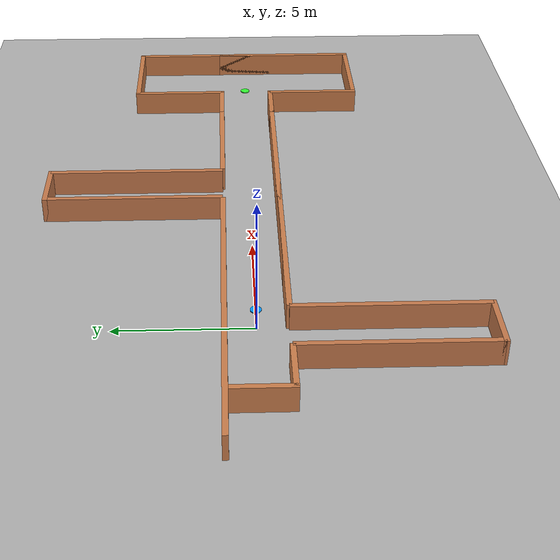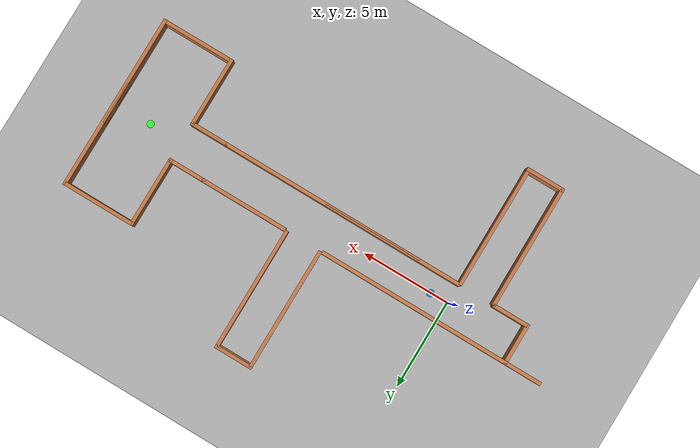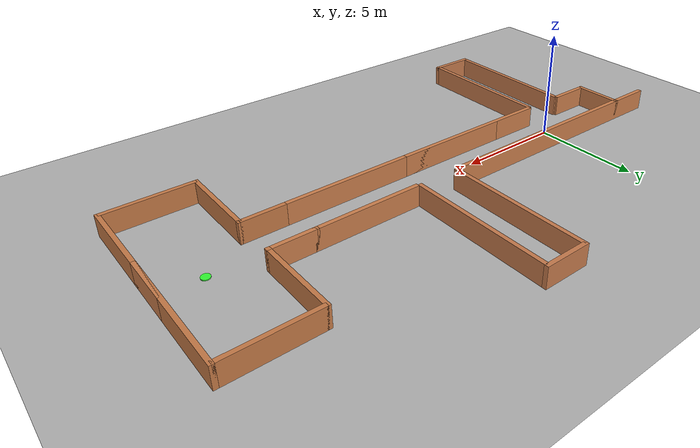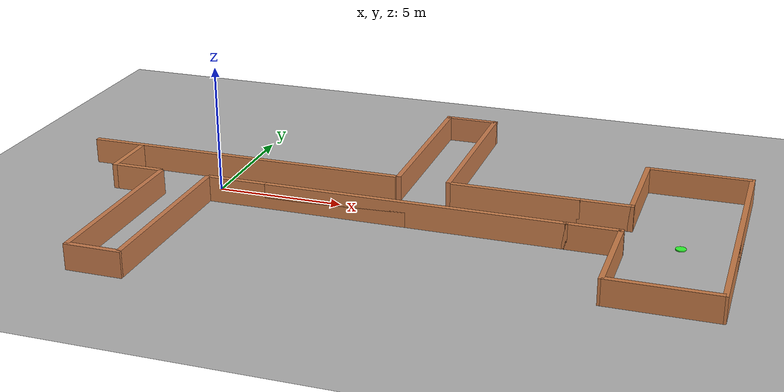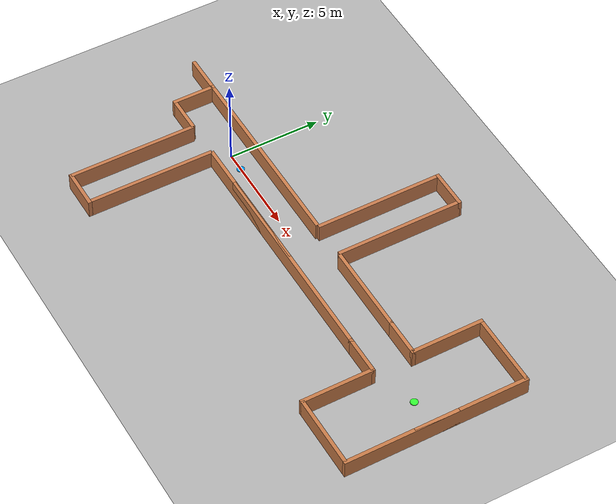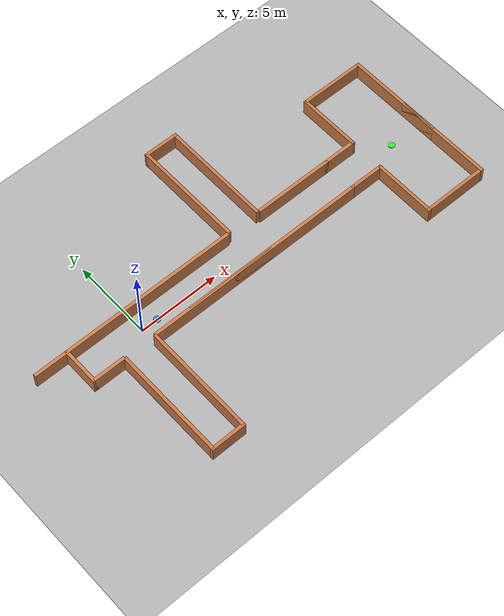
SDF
<sdf version="1.7">
  <world name="t_dual_corridor">
    <physics type="ode">
      <max_step_size>0.0005</max_step_size>
      <real_time_factor>1</real_time_factor>
      <real_time_update_rate>2000</real_time_update_rate>
      <ode>
        <solver>
          <type>quick</type>
          <iters>200</iters>
          <sor>1.3</sor>
          <use_dynamic_moi_rescaling>0</use_dynamic_moi_rescaling>
        </solver>
        <constraints>
          <cfm>1e-5</cfm>
          <erp>0.2</erp>
          <contact_max_correcting_vel>100</contact_max_correcting_vel>
          <contact_surface_layer>0.001</contact_surface_layer>
        </constraints>
      </ode>
    </physics>
    <light name="sun" type="directional">
      <cast_shadows>1</cast_shadows>
      <pose>0 0 10 0 -0 0</pose>
      <diffuse>0.8 0.8 0.8 1</diffuse>
      <specular>0.2 0.2 0.2 1</specular>
      <direction>-0.5 0.1 -0.9</direction>
      <attenuation>
        <range>10</range>
      </attenuation>
      <spot>
        <inner_angle>0</inner_angle>
        <outer_angle>0</outer_angle>
        <falloff>0</falloff>
      </spot>
    </light>
    <model name="ground_plane">
      <static>1</static>
      <link name="link">
        <collision name="collision">
          <geometry>
            <plane>
              <normal>0 0 1</normal>
              <size>160 160</size>
            </plane>
          </geometry>
          <surface>
            <friction>
              <ode>
                <mu>1</mu>
                <mu2>1</mu2>
              </ode>
              <torsional>
                <ode />
              </torsional>
            </friction>
            <contact>
              <ode />
            </contact>
            <bounce />
          </surface>
          <max_contacts>10</max_contacts>
        </collision>
        <visual name="visual">
          <cast_shadows>0</cast_shadows>
          <geometry>
            <plane>
              <normal>0 0 1</normal>
              <size>160 160</size>
            </plane>
          </geometry>
          <material>
            <ambient>0.3 0.3 0.3 1</ambient>
            <diffuse>0.7 0.7 0.7 1</diffuse>
          </material>
        </visual>
        <self_collide>0</self_collide>
        <enable_wind>0</enable_wind>
        <kinematic>0</kinematic>
      </link>
    </model>
    <model name="wall_main_bottom_far_left">
      <static>1</static>
      <pose>-3 -1.1 0.5 0 -0 0</pose>
      <link name="link">
        <collision name="collision">
          <geometry>
            <box>
              <size>2 0.2 1</size>
            </box>
          </geometry>
          <max_contacts>10</max_contacts>
          <surface>
            <contact>
              <ode />
            </contact>
            <bounce />
            <friction>
              <torsional>
                <ode />
              </torsional>
              <ode />
            </friction>
          </surface>
        </collision>
        <visual name="visual">
          <geometry>
            <box>
              <size>2 0.2 1</size>
            </box>
          </geometry>
          <material>
            <ambient>0.6 0.4 0.2 1</ambient>
            <diffuse>0.8 0.5 0.3 1</diffuse>
          </material>
        </visual>
        <self_collide>0</self_collide>
        <enable_wind>0</enable_wind>
        <kinematic>0</kinematic>
      </link>
    </model>
    <model name="wall_main_bottom_left">
      <static>1</static>
      <pose>4 -1.1 0.5 0 -0 0</pose>
      <link name="link">
        <collision name="collision">
          <geometry>
            <box>
              <size>8 0.2 1</size>
            </box>
          </geometry>
          <max_contacts>10</max_contacts>
          <surface>
            <contact>
              <ode />
            </contact>
            <bounce />
            <friction>
              <torsional>
                <ode />
              </torsional>
              <ode />
            </friction>
          </surface>
        </collision>
        <visual name="visual">
          <geometry>
            <box>
              <size>8 0.2 1</size>
            </box>
          </geometry>
          <material>
            <ambient>0.6 0.4 0.2 1</ambient>
            <diffuse>0.8 0.5 0.3 1</diffuse>
          </material>
        </visual>
        <self_collide>0</self_collide>
        <enable_wind>0</enable_wind>
        <kinematic>0</kinematic>
      </link>
    </model>
    <model name="wall_main_bottom_mid_right">
      <static>1</static>
      <pose>8.2 -1.1 0.5 0 -0 0</pose>
      <link name="link">
        <collision name="collision">
          <geometry>
            <box>
              <size>11.6 0.2 1</size>
            </box>
          </geometry>
          <max_contacts>10</max_contacts>
          <surface>
            <contact>
              <ode />
            </contact>
            <bounce />
            <friction>
              <torsional>
                <ode />
              </torsional>
              <ode />
            </friction>
          </surface>
        </collision>
        <visual name="visual">
          <geometry>
            <box>
              <size>11.6 0.2 1</size>
            </box>
          </geometry>
          <material>
            <ambient>0.6 0.4 0.2 1</ambient>
            <diffuse>0.8 0.5 0.3 1</diffuse>
          </material>
        </visual>
        <self_collide>0</self_collide>
        <enable_wind>0</enable_wind>
        <kinematic>0</kinematic>
      </link>
    </model>
    <model name="wall_main_top_left">
      <static>1</static>
      <pose>0.4 1.1 0.5 0 -0 0</pose>
      <link name="link">
        <collision name="collision">
          <geometry>
            <box>
              <size>13.0 0.2 1</size>
            </box>
          </geometry>
          <max_contacts>10</max_contacts>
          <surface>
            <contact>
              <ode />
            </contact>
            <bounce />
            <friction>
              <torsional>
                <ode />
              </torsional>
              <ode />
            </friction>
          </surface>
        </collision>
        <visual name="visual">
          <geometry>
            <box>
              <size>13.0 0.2 1</size>
            </box>
          </geometry>
          <material>
            <ambient>0.6 0.4 0.2 1</ambient>
            <diffuse>0.8 0.5 0.3 1</diffuse>
          </material>
        </visual>
        <self_collide>0</self_collide>
        <enable_wind>0</enable_wind>
        <kinematic>0</kinematic>
      </link>
    </model>
    <model name="wall_main_top_mid_right">
      <static>1</static>
      <pose>11.6 1.1 0.5 0 -0 0</pose>
      <link name="link">
        <collision name="collision">
          <geometry>
            <box>
              <size>5.0 0.2 1</size>
            </box>
          </geometry>
          <max_contacts>10</max_contacts>
          <surface>
            <contact>
              <ode />
            </contact>
            <bounce />
            <friction>
              <torsional>
                <ode />
              </torsional>
              <ode />
            </friction>
          </surface>
        </collision>
        <visual name="visual">
          <geometry>
            <box>
              <size>5.0 0.2 1</size>
            </box>
          </geometry>
          <material>
            <ambient>0.6 0.4 0.2 1</ambient>
            <diffuse>0.8 0.5 0.3 1</diffuse>
          </material>
        </visual>
        <self_collide>0</self_collide>
        <enable_wind>0</enable_wind>
        <kinematic>0</kinematic>
      </link>
    </model>
    <model name="wall_main_top_join_mid_far_right">
      <static>1</static>
      <pose>15 1.1 0.5 0 -0 0</pose>
      <link name="link">
        <collision name="collision">
          <geometry>
            <box>
              <size>2 0.2 1</size>
            </box>
          </geometry>
          <max_contacts>10</max_contacts>
          <surface>
            <contact>
              <ode />
            </contact>
            <bounce />
            <friction>
              <torsional>
                <ode />
              </torsional>
              <ode />
            </friction>
          </surface>
        </collision>
        <visual name="visual">
          <geometry>
            <box>
              <size>2 0.2 1</size>
            </box>
          </geometry>
          <material>
            <ambient>0.6 0.4 0.2 1</ambient>
            <diffuse>0.8 0.5 0.3 1</diffuse>
          </material>
        </visual>
        <self_collide>0</self_collide>
        <enable_wind>0</enable_wind>
        <kinematic>0</kinematic>
      </link>
    </model>
    <model name="wall_main_left_cap">
      <static>1</static>
      <pose>-4 0 0.5 0 -0 0</pose>
      <link name="link">
        <collision name="collision">
          <geometry>
            <box>
              <size>0.2 2.4 1</size>
            </box>
          </geometry>
          <max_contacts>10</max_contacts>
          <surface>
            <contact>
              <ode />
            </contact>
            <bounce />
            <friction>
              <torsional>
                <ode />
              </torsional>
              <ode />
            </friction>
          </surface>
        </collision>
        <visual name="visual">
          <geometry>
            <box>
              <size>0.2 2.4 1</size>
            </box>
          </geometry>
          <material>
            <ambient>0.6 0.4 0.2 1</ambient>
            <diffuse>0.8 0.5 0.3 1</diffuse>
          </material>
        </visual>
        <self_collide>0</self_collide>
        <enable_wind>0</enable_wind>
        <kinematic>0</kinematic>
      </link>
    </model>
    <model name="wall_main_right_cap">
      <static>1</static>
      <pose>20 0 0.5 0 -0 0</pose>
      <link name="link">
        <collision name="collision">
          <geometry>
            <box>
              <size>0.2 2.4 1</size>
            </box>
          </geometry>
          <max_contacts>10</max_contacts>
          <surface>
            <contact>
              <ode />
            </contact>
            <bounce />
            <friction>
              <torsional>
                <ode />
              </torsional>
              <ode />
            </friction>
          </surface>
        </collision>
        <visual name="visual">
          <geometry>
            <box>
              <size>0.2 2.4 1</size>
            </box>
          </geometry>
          <material>
            <ambient>0.6 0.4 0.2 1</ambient>
            <diffuse>0.8 0.5 0.3 1</diffuse>
          </material>
        </visual>
        <self_collide>0</self_collide>
        <enable_wind>0</enable_wind>
        <kinematic>0</kinematic>
      </link>
    </model>
    <model name="wall_t_left">
      <static>1</static>
      <pose>7 4.55 0.5 0 -0 0</pose>
      <link name="link">
        <collision name="collision">
          <geometry>
            <box>
              <size>0.2 6.9 1</size>
            </box>
          </geometry>
          <max_contacts>10</max_contacts>
          <surface>
            <contact>
              <ode />
            </contact>
            <bounce />
            <friction>
              <torsional>
                <ode />
              </torsional>
              <ode />
            </friction>
          </surface>
        </collision>
        <visual name="visual">
          <geometry>
            <box>
              <size>0.2 6.9 1</size>
            </box>
          </geometry>
          <material>
            <ambient>0.58 0.38 0.2 1</ambient>
            <diffuse>0.78 0.48 0.3 1</diffuse>
          </material>
        </visual>
        <self_collide>0</self_collide>
        <enable_wind>0</enable_wind>
        <kinematic>0</kinematic>
      </link>
    </model>
    <model name="wall_t_right">
      <static>1</static>
      <pose>9 4.55 0.5 0 -0 0</pose>
      <link name="link">
        <collision name="collision">
          <geometry>
            <box>
              <size>0.2 6.9 1</size>
            </box>
          </geometry>
          <max_contacts>10</max_contacts>
          <surface>
            <contact>
              <ode />
            </contact>
            <bounce />
            <friction>
              <torsional>
                <ode />
              </torsional>
              <ode />
            </friction>
          </surface>
        </collision>
        <visual name="visual">
          <geometry>
            <box>
              <size>0.2 6.9 1</size>
            </box>
          </geometry>
          <material>
            <ambient>0.58 0.38 0.2 1</ambient>
            <diffuse>0.78 0.48 0.3 1</diffuse>
          </material>
        </visual>
        <self_collide>0</self_collide>
        <enable_wind>0</enable_wind>
        <kinematic>0</kinematic>
      </link>
    </model>
    <model name="wall_t_top_cap">
      <static>1</static>
      <pose>8 8 0.5 0 -0 0</pose>
      <link name="link">
        <collision name="collision">
          <geometry>
            <box>
              <size>2.2 0.2 1</size>
            </box>
          </geometry>
          <max_contacts>10</max_contacts>
          <surface>
            <contact>
              <ode />
            </contact>
            <bounce />
            <friction>
              <torsional>
                <ode />
              </torsional>
              <ode />
            </friction>
          </surface>
        </collision>
        <visual name="visual">
          <geometry>
            <box>
              <size>2.2 0.2 1</size>
            </box>
          </geometry>
          <material>
            <ambient>0.58 0.38 0.2 1</ambient>
            <diffuse>0.78 0.48 0.3 1</diffuse>
          </material>
        </visual>
        <self_collide>0</self_collide>
        <enable_wind>0</enable_wind>
        <kinematic>0</kinematic>
      </link>
    </model>
    <model name="wall_l_left">
      <static>1</static>
      <pose>-2 -4.55 0.5 0 -0 0</pose>
      <link name="link">
        <collision name="collision">
          <geometry>
            <box>
              <size>0.2 6.9 1</size>
            </box>
          </geometry>
          <max_contacts>10</max_contacts>
          <surface>
            <contact>
              <ode />
            </contact>
            <bounce />
            <friction>
              <torsional>
                <ode />
              </torsional>
              <ode />
            </friction>
          </surface>
        </collision>
        <visual name="visual">
          <geometry>
            <box>
              <size>0.2 6.9 1</size>
            </box>
          </geometry>
          <material>
            <ambient>0.58 0.38 0.2 1</ambient>
            <diffuse>0.78 0.48 0.3 1</diffuse>
          </material>
        </visual>
        <self_collide>0</self_collide>
        <enable_wind>0</enable_wind>
        <kinematic>0</kinematic>
      </link>
    </model>
    <model name="wall_l_right">
      <static>1</static>
      <pose>0 -4.55 0.5 0 -0 0</pose>
      <link name="link">
        <collision name="collision">
          <geometry>
            <box>
              <size>0.2 6.9 1</size>
            </box>
          </geometry>
          <max_contacts>10</max_contacts>
          <surface>
            <contact>
              <ode />
            </contact>
            <bounce />
            <friction>
              <torsional>
                <ode />
              </torsional>
              <ode />
            </friction>
          </surface>
        </collision>
        <visual name="visual">
          <geometry>
            <box>
              <size>0.2 6.9 1</size>
            </box>
          </geometry>
          <material>
            <ambient>0.58 0.38 0.2 1</ambient>
            <diffuse>0.78 0.48 0.3 1</diffuse>
          </material>
        </visual>
        <self_collide>0</self_collide>
        <enable_wind>0</enable_wind>
        <kinematic>0</kinematic>
      </link>
    </model>
    <model name="wall_l_bottom_cap">
      <static>1</static>
      <pose>-1 -8 0.5 0 -0 0</pose>
      <link name="link">
        <collision name="collision">
          <geometry>
            <box>
              <size>2.2 0.2 1</size>
            </box>
          </geometry>
          <max_contacts>10</max_contacts>
          <surface>
            <contact>
              <ode />
            </contact>
            <bounce />
            <friction>
              <torsional>
                <ode />
              </torsional>
              <ode />
            </friction>
          </surface>
        </collision>
        <visual name="visual">
          <geometry>
            <box>
              <size>2.2 0.2 1</size>
            </box>
          </geometry>
          <material>
            <ambient>0.58 0.38 0.2 1</ambient>
            <diffuse>0.78 0.48 0.3 1</diffuse>
          </material>
        </visual>
        <self_collide>0</self_collide>
        <enable_wind>0</enable_wind>
        <kinematic>0</kinematic>
      </link>
    </model>
    <model name="wall_e_spine_right_top">
      <static>1</static>
      <pose>16 3.05 0.5 0 -0 0</pose>
      <link name="link">
        <collision name="collision">
          <geometry>
            <box>
              <size>0.2 3.9 1</size>
            </box>
          </geometry>
          <max_contacts>10</max_contacts>
          <surface>
            <contact>
              <ode />
            </contact>
            <bounce />
            <friction>
              <torsional>
                <ode />
              </torsional>
              <ode />
            </friction>
          </surface>
        </collision>
        <visual name="visual">
          <geometry>
            <box>
              <size>0.2 3.9 1</size>
            </box>
          </geometry>
          <material>
            <ambient>0.55 0.35 0.18 1</ambient>
            <diffuse>0.78 0.48 0.28 1</diffuse>
          </material>
        </visual>
        <self_collide>0</self_collide>
        <enable_wind>0</enable_wind>
        <kinematic>0</kinematic>
      </link>
    </model>
    <model name="wall_e_spine_right_bottom">
      <static>1</static>
      <pose>16 -3.05 0.5 0 -0 0</pose>
      <link name="link">
        <collision name="collision">
          <geometry>
            <box>
              <size>0.2 3.9 1</size>
            </box>
          </geometry>
          <max_contacts>10</max_contacts>
          <surface>
            <contact>
              <ode />
            </contact>
            <bounce />
            <friction>
              <torsional>
                <ode />
              </torsional>
              <ode />
            </friction>
          </surface>
        </collision>
        <visual name="visual">
          <geometry>
            <box>
              <size>0.2 3.9 1</size>
            </box>
          </geometry>
          <material>
            <ambient>0.55 0.35 0.18 1</ambient>
            <diffuse>0.78 0.48 0.28 1</diffuse>
          </material>
        </visual>
        <self_collide>0</self_collide>
        <enable_wind>0</enable_wind>
        <kinematic>0</kinematic>
      </link>
    </model>
    <model name="wall_main_e_join_l_top">
      <static>1</static>
      <pose>14 1.1 0.5 0 -0 0</pose>
      <link name="link">
        <collision name="collision">
          <geometry>
            <box>
              <size>0.2 0.2 1</size>
            </box>
          </geometry>
          <max_contacts>10</max_contacts>
          <surface>
            <contact>
              <ode />
            </contact>
            <bounce />
            <friction>
              <torsional>
                <ode />
              </torsional>
              <ode />
            </friction>
          </surface>
        </collision>
        <visual name="visual">
          <geometry>
            <box>
              <size>0.2 0.2 1</size>
            </box>
          </geometry>
          <material>
            <ambient>0.55 0.35 0.18 1</ambient>
            <diffuse>0.78 0.48 0.28 1</diffuse>
          </material>
        </visual>
        <self_collide>0</self_collide>
        <enable_wind>0</enable_wind>
        <kinematic>0</kinematic>
      </link>
    </model>
    <model name="wall_main_e_join_l_bottom">
      <static>1</static>
      <pose>14 -1.1 0.5 0 -0 0</pose>
      <link name="link">
        <collision name="collision">
          <geometry>
            <box>
              <size>0.2 0.2 1</size>
            </box>
          </geometry>
          <max_contacts>10</max_contacts>
          <surface>
            <contact>
              <ode />
            </contact>
            <bounce />
            <friction>
              <torsional>
                <ode />
              </torsional>
              <ode />
            </friction>
          </surface>
        </collision>
        <visual name="visual">
          <geometry>
            <box>
              <size>0.2 0.2 1</size>
            </box>
          </geometry>
          <material>
            <ambient>0.55 0.35 0.18 1</ambient>
            <diffuse>0.78 0.48 0.28 1</diffuse>
          </material>
        </visual>
        <self_collide>0</self_collide>
        <enable_wind>0</enable_wind>
        <kinematic>0</kinematic>
      </link>
    </model>
    <model name="wall_main_e_join_r_top">
      <static>1</static>
      <pose>16 1.1 0.5 0 -0 0</pose>
      <link name="link">
        <collision name="collision">
          <geometry>
            <box>
              <size>0.2 0.2 1</size>
            </box>
          </geometry>
          <max_contacts>10</max_contacts>
          <surface>
            <contact>
              <ode />
            </contact>
            <bounce />
            <friction>
              <torsional>
                <ode />
              </torsional>
              <ode />
            </friction>
          </surface>
        </collision>
        <visual name="visual">
          <geometry>
            <box>
              <size>0.2 0.2 1</size>
            </box>
          </geometry>
          <material>
            <ambient>0.55 0.35 0.18 1</ambient>
            <diffuse>0.78 0.48 0.28 1</diffuse>
          </material>
        </visual>
        <self_collide>0</self_collide>
        <enable_wind>0</enable_wind>
        <kinematic>0</kinematic>
      </link>
    </model>
    <model name="wall_main_e_join_r_bottom">
      <static>1</static>
      <pose>16 -1.1 0.5 0 -0 0</pose>
      <link name="link">
        <collision name="collision">
          <geometry>
            <box>
              <size>0.2 0.2 1</size>
            </box>
          </geometry>
          <max_contacts>10</max_contacts>
          <surface>
            <contact>
              <ode />
            </contact>
            <bounce />
            <friction>
              <torsional>
                <ode />
              </torsional>
              <ode />
            </friction>
          </surface>
        </collision>
        <visual name="visual">
          <geometry>
            <box>
              <size>0.2 0.2 1</size>
            </box>
          </geometry>
          <material>
            <ambient>0.55 0.35 0.18 1</ambient>
            <diffuse>0.78 0.48 0.28 1</diffuse>
          </material>
        </visual>
        <self_collide>0</self_collide>
        <enable_wind>0</enable_wind>
        <kinematic>0</kinematic>
      </link>
    </model>
    <model name="wall_e_top_arm_top">
      <static>1</static>
      <pose>18 4.9 0.5 0 -0 0</pose>
      <link name="link">
        <collision name="collision">
          <geometry>
            <box>
              <size>4 0.2 1</size>
            </box>
          </geometry>
          <max_contacts>10</max_contacts>
          <surface>
            <contact>
              <ode />
            </contact>
            <bounce />
            <friction>
              <torsional>
                <ode />
              </torsional>
              <ode />
            </friction>
          </surface>
        </collision>
        <visual name="visual">
          <geometry>
            <box>
              <size>4 0.2 1</size>
            </box>
          </geometry>
          <material>
            <ambient>0.55 0.35 0.18 1</ambient>
            <diffuse>0.78 0.48 0.28 1</diffuse>
          </material>
        </visual>
        <self_collide>0</self_collide>
        <enable_wind>0</enable_wind>
        <kinematic>0</kinematic>
      </link>
    </model>
    <model name="wall_join_main_bottom_mid_to_e_mid_bottom">
      <static>1</static>
      <pose>15 -1.1 0.5 0 -0 0</pose>
      <link name="link">
        <collision name="collision">
          <geometry>
            <box>
              <size>2 0.2 1</size>
            </box>
          </geometry>
          <max_contacts>10</max_contacts>
          <surface>
            <contact>
              <ode />
            </contact>
            <bounce />
            <friction>
              <torsional>
                <ode />
              </torsional>
              <ode />
            </friction>
          </surface>
        </collision>
        <visual name="visual">
          <geometry>
            <box>
              <size>2 0.2 1</size>
            </box>
          </geometry>
          <material>
            <ambient>0.55 0.35 0.18 1</ambient>
            <diffuse>0.78 0.48 0.28 1</diffuse>
          </material>
        </visual>
        <self_collide>0</self_collide>
        <enable_wind>0</enable_wind>
        <kinematic>0</kinematic>
      </link>
    </model>
    <model name="wall_e_bottom_arm_bottom">
      <static>1</static>
      <pose>18 -4.9 0.5 0 -0 0</pose>
      <link name="link">
        <collision name="collision">
          <geometry>
            <box>
              <size>4 0.2 1</size>
            </box>
          </geometry>
          <max_contacts>10</max_contacts>
          <surface>
            <contact>
              <ode />
            </contact>
            <bounce />
            <friction>
              <torsional>
                <ode />
              </torsional>
              <ode />
            </friction>
          </surface>
        </collision>
        <visual name="visual">
          <geometry>
            <box>
              <size>4 0.2 1</size>
            </box>
          </geometry>
          <material>
            <ambient>0.55 0.35 0.18 1</ambient>
            <diffuse>0.78 0.48 0.28 1</diffuse>
          </material>
        </visual>
        <self_collide>0</self_collide>
        <enable_wind>0</enable_wind>
        <kinematic>0</kinematic>
      </link>
    </model>
    <model name="wall_e_end_cap">
      <static>1</static>
      <pose>20 0 0.5 0 -0 0</pose>
      <link name="link">
        <collision name="collision">
          <geometry>
            <box>
              <size>0.2 10 1</size>
            </box>
          </geometry>
          <max_contacts>10</max_contacts>
          <surface>
            <contact>
              <ode />
            </contact>
            <bounce />
            <friction>
              <torsional>
                <ode />
              </torsional>
              <ode />
            </friction>
          </surface>
        </collision>
        <visual name="visual">
          <geometry>
            <box>
              <size>0.2 10 1</size>
            </box>
          </geometry>
          <material>
            <ambient>0.55 0.35 0.18 1</ambient>
            <diffuse>0.78 0.48 0.28 1</diffuse>
          </material>
        </visual>
        <self_collide>0</self_collide>
        <enable_wind>0</enable_wind>
        <kinematic>0</kinematic>
      </link>
    </model>
    <model name="spawn_marker_a">
      <static>1</static>
      <pose>1 0 0.05 0 -0 0</pose>
      <link name="link">
        <visual name="visual">
          <geometry>
            <cylinder>
              <radius>0.2</radius>
              <length>0.04</length>
            </cylinder>
          </geometry>
          <material>
            <ambient>0 0.6 1 1</ambient>
            <diffuse>0 0.6 1 1</diffuse>
          </material>
        </visual>
        <self_collide>0</self_collide>
        <enable_wind>0</enable_wind>
        <kinematic>0</kinematic>
      </link>
    </model>
    <model name="spawn_marker_b">
      <static>1</static>
      <pose>18 0 0.05 0 -0 0</pose>
      <link name="link">
        <visual name="visual">
          <geometry>
            <cylinder>
              <radius>0.2</radius>
              <length>0.04</length>
            </cylinder>
          </geometry>
          <material>
            <ambient>0.2 1 0.2 1</ambient>
            <diffuse>0.2 1 0.2 1</diffuse>
          </material>
        </visual>
        <self_collide>0</self_collide>
        <enable_wind>0</enable_wind>
        <kinematic>0</kinematic>
      </link>
    </model>
    <gravity>0 0 -9.8</gravity>
    <magnetic_field>6e-06 2.3e-05 -4.2e-05</magnetic_field>
    <atmosphere type="adiabatic" />
    <scene>
      <ambient>0.4 0.4 0.4 1</ambient>
      <background>0.7 0.7 0.7 1</background>
      <shadows>1</shadows>
    </scene>
    <audio>
      <device>default</device>
    </audio>
    <wind />
    <spherical_coordinates>
      <surface_model>EARTH_WGS84</surface_model>
      <latitude_deg>0</latitude_deg>
      <longitude_deg>0</longitude_deg>
      <elevation>0</elevation>
      <heading_deg>0</heading_deg>
    </spherical_coordinates>
    <gui fullscreen="0">
      <camera name="user_camera">
        <pose>33.6426 -32.0278 16.3581 0 0.275643 2.35619</pose>
        <view_controller>orbit</view_controller>
        <projection_type>perspective</projection_type>
      </camera>
    </gui>
    <plugin name="gazebo_ros_state" filename="libgazebo_ros_state.so">
      <ros>
        <namespace>/gazebo</namespace>
      </ros>
      <update_rate>100.0</update_rate>
    </plugin>
  </world>
</sdf>
